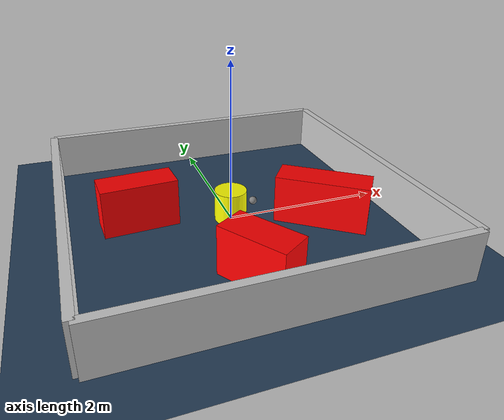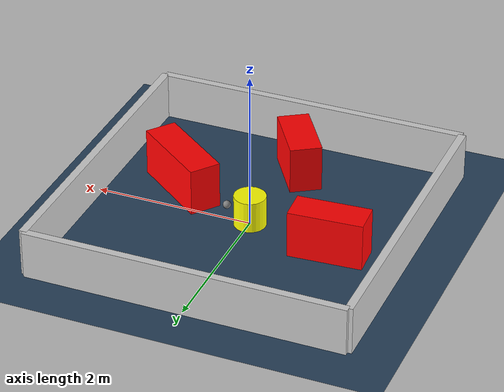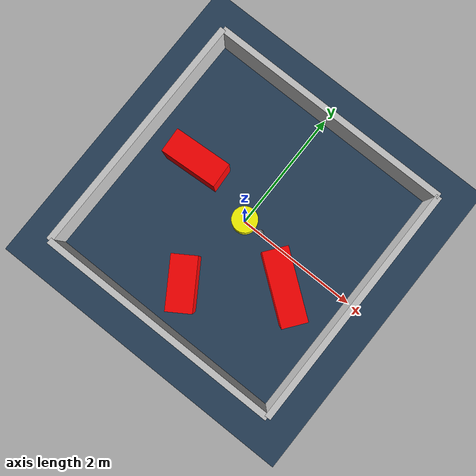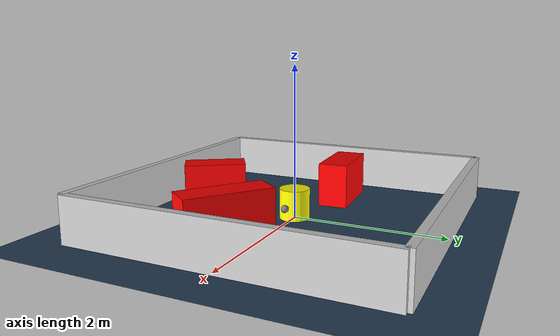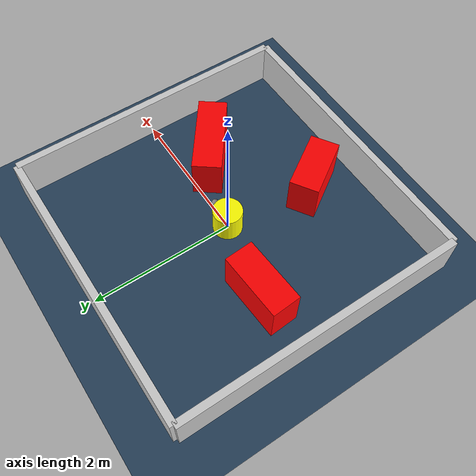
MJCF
<?xml version="1.0" ?>
<mujoco model="generated_environment">
  <option timestep="0.01" integrator="RK4" cone="elliptic"/>
  <default>
    <geom density="1"/>
  </default>
  <asset>
    <texture builtin="gradient" height="3072" rgb1="0.3 0.5 0.7" rgb2="0 0 0" type="skybox" width="512"/>
    <texture builtin="checker" height="300" mark="edge" markrgb="0.8 0.8 0.8" name="groundplane" rgb1="0.2 0.3 0.4" rgb2="0.1 0.2 0.3" type="2d" width="300"/>
    <material name="groundplane" reflectance="0.2" texrepeat="5 5" texture="groundplane" texuniform="true"/>
    <material name="robot" rgba="0.0 1.0 0.0 1"/>
  </asset>
  <worldbody>
    <light dir="0 0 -1" directional="true" pos="0 0 1.5"/>
    <geom condim="4" friction="1.0 0.005 0.001" material="groundplane" name="floor" size="0 0 0.05" type="plane"/>
    <body name="walls">
      <geom name="wall_1" condim="4" pos="-2.0 0.0 0.3" rgba="0.800000011920929 0.800000011920929 0.800000011920929 1.0" size="0.05 2.0 0.3" type="box"/>
      <geom name="wall_2" condim="4" pos="2.0 0.0 0.3" rgba="0.800000011920929 0.800000011920929 0.800000011920929 1.0" size="0.05 2.0 0.3" type="box"/>
      <geom name="wall_3" condim="4" pos="0.0 -2.0 0.3" rgba="0.800000011920929 0.800000011920929 0.800000011920929 1.0" size="2.0 0.05 0.3" type="box"/>
      <geom name="wall_4" condim="4" pos="0.0 2.0 0.3" rgba="0.800000011920929 0.800000011920929 0.800000011920929 1.0" size="2.0 0.05 0.3" type="box"/>
    </body>
    <body name="robot">
      <joint name="joint_x" type="slide" pos="0 0 0" axis="1 0 0"/>
      <joint name="joint_y" type="slide" pos="0 0 0" axis="0 1 0"/>
      <geom name="robot" type="sphere" pos="0.3 0.0 0.2" size="0.05" mass="5." friction="1.0 0.005 0.0001" condim="4" rgba="0.5 0.5 0.5 1.0"/>
      <site name="sensor_ball"/>
    </body>
    <body name="obstacle_movable_1">
      <geom name="obstacle_movable_1" condim="4" pos="0.0 0.0 0.2" euler="0 0 0.0" friction="1.0 0.005 0.001" rgba="1.0 1.0 0.0 1.0" size="0.2 0.2 0.0" type="cylinder" mass="0.1"/>
      <joint type="free"/>
    </body>
    <body name="obstacle_2_static">
      <geom name="obstacle_2_static" condim="4" pos="-0.12465242053980274 -1.2946940034675252 0.3" euler="0 0 302.86847481048505" friction="1.0 0.005 0.001" rgba="1 0 0 1" size="0.4173914730891488 0.2 0.3" type="box"/>
    </body>
    <body name="obstacle_3_static">
      <geom name="obstacle_3_static" condim="4" pos="-1.1121248823669814 0.24754563241817107 0.3" euler="0 0 3.5317751258687213" friction="1.0 0.005 0.001" rgba="1 0 0 1" size="0.4621003066590431 0.2 0.3" type="box"/>
    </body>
    <body name="obstacle_4_static">
      <geom name="obstacle_4_static" condim="4" pos="1.063439075798137 -0.41337732119275095 0.3" euler="0 0 322.844238319907" friction="1.0 0.005 0.001" rgba="1 0 0 1" size="0.5654979513082403 0.2 0.3" type="box"/>
    </body>
  </worldbody>
  <actuator>
    <motor name="actuator_x" joint="joint_x" gear="1" ctrlrange="-1 1"/>
    <motor name="actuator_y" joint="joint_y" gear="1" ctrlrange="-1 1"/>
  </actuator>
</mujoco>
